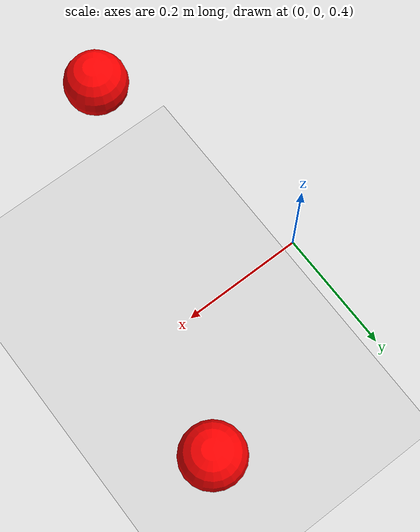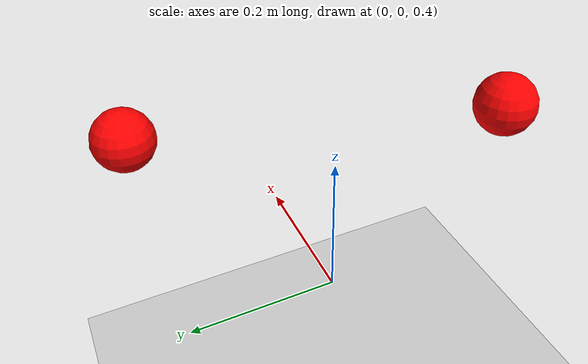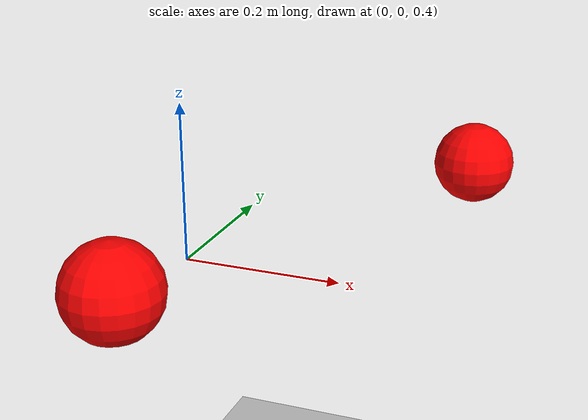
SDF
<?xml version="1.0" ?>
<sdf version="1.6">
  <world name="default">

    <include>
      <uri>model://ground_plane</uri>
    </include>

    <include>
      <uri>model://sun</uri>
    </include>

    La tua palla 1
    <model name="palla">
      <pose>0.11 -0.35 0.53 0 0 0</pose>
      <link name="link">
        <gravity>0</gravity>
        <visual name="visual">
          <geometry>
            <sphere>
              <radius>0.05</radius>
            </sphere>
          </geometry>
          <material>
            <ambient>1 0 0 1</ambient>
            <diffuse>1 0 0 1</diffuse>
          </material>
        </visual>
        <collision name="collision">
          <geometry>
            <sphere>
              <radius>0.05</radius>
            </sphere>
          </geometry>
        </collision>
        <inertial>
          <mass>10.0</mass>
          <inertia>
            <ixx>0.004</ixx>
            <iyy>0.004</iyy>
            <izz>0.004</izz>
            <ixy>0</ixy>
            <ixz>0</ixz>
            <iyz>0</iyz>
          </inertia>
        </inertial>
      </link>
    </model>

    <!-- La tua palla 2 -->
    <model name="palla2">
      <pose>0.31 0.2 0.5 0 0 0</pose>
      <link name="link">
        <gravity>0</gravity>
        <visual name="visual">
          <geometry>
            <sphere>
              <radius>0.05</radius>
            </sphere>
          </geometry>
          <material>
            <ambient>1 0 0 1</ambient>
            <diffuse>1 0 0 1</diffuse>
          </material>
        </visual>
        <collision name="collision">
          <geometry>
            <sphere>
              <radius>0.05</radius>
            </sphere>
          </geometry>
        </collision>
        <inertial>
          <mass>10.0</mass>
          <inertia>
            <ixx>0.004</ixx>
            <iyy>0.004</iyy>
            <izz>0.004</izz>
            <ixy>0</ixy>
            <ixz>0</ixz>
            <iyz>0</iyz>
          </inertia>
        </inertial>
      </link>
    </model>

    <!-- Il tuo rettangolo  -->
  </world>
</sdf>
